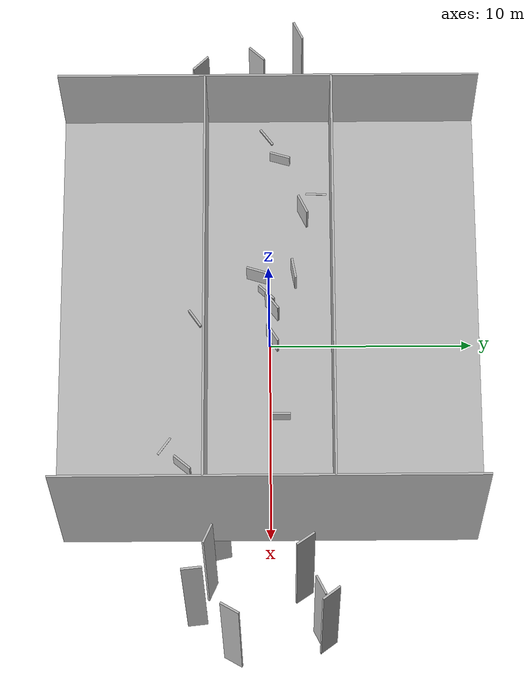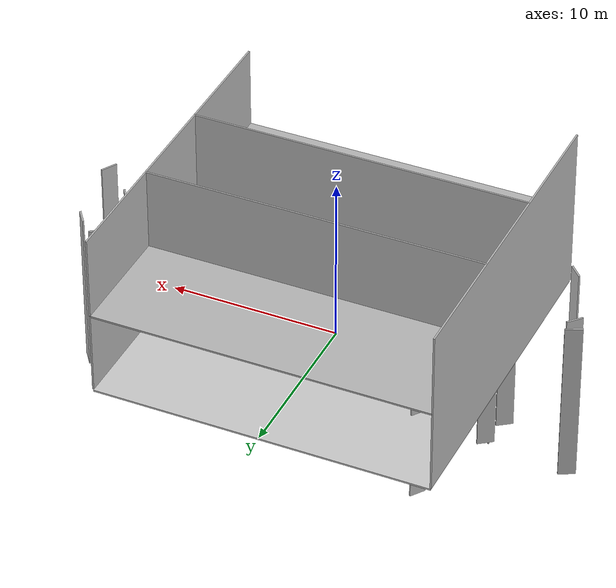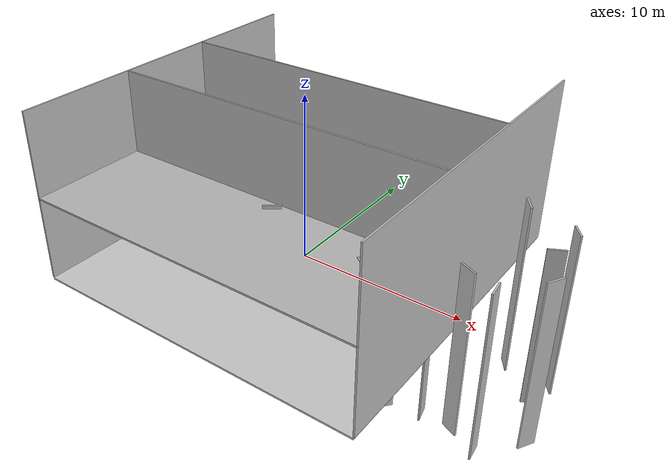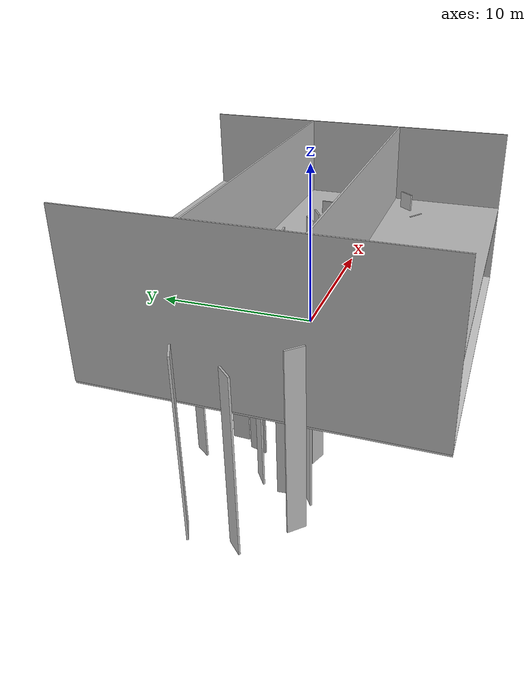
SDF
<?xml version="1.0"?>
<!--
  You can echo lidar messages using:
    ign topic -e -t /lidar
-->
<sdf version="1.8">
  <world name="empty_world">
    <physics name="1ms" type="ignored">
      <max_step_size>0.002</max_step_size>
      <real_time_factor>2.0</real_time_factor>
    </physics>
    <plugin filename="libignition-gazebo-physics-system.so" name="ignition::gazebo::systems::Physics"></plugin>
    <plugin filename="libignition-gazebo-sensors-system.so" name="ignition::gazebo::systems::Sensors">
      <render_engine>ogre2</render_engine>
    </plugin>
    <plugin filename="libignition-gazebo-scene-broadcaster-system.so" name="ignition::gazebo::systems::SceneBroadcaster"></plugin>
    <plugin filename="ignition-gazebo-user-commands-system" name="ignition::gazebo::systems::UserCommands"></plugin>

    <gui fullscreen="0">

      <!-- 3D scene -->
      <plugin filename="MinimalScene" name="3D View">
        <ignition-gui>
          <title>3D View</title>
          <property type="bool" key="showTitleBar">false</property>
          <property type="string" key="state">docked</property>
        </ignition-gui>

        <engine>ogre2</engine>
        <scene>scene</scene>
        <ambient_light>0.4 0.4 0.4</ambient_light>
        <background_color>0.8 0.8 0.8</background_color>
        <camera_pose>-6 0 6 0 0.5 0</camera_pose>
      </plugin>

      <!-- Plugins that add functionality to the scene -->
      <plugin filename="EntityContextMenuPlugin" name="Entity context menu">
        <ignition-gui>
          <property key="state" type="string">floating</property>
          <property key="width" type="double">5</property>
          <property key="height" type="double">5</property>
          <property key="showTitleBar" type="bool">false</property>
        </ignition-gui>
      </plugin>
      <plugin filename="GzSceneManager" name="Scene Manager">
        <ignition-gui>
          <property key="resizable" type="bool">false</property>
          <property key="width" type="double">5</property>
          <property key="height" type="double">5</property>
          <property key="state" type="string">floating</property>
          <property key="showTitleBar" type="bool">false</property>
        </ignition-gui>
      </plugin>
      <plugin filename="InteractiveViewControl" name="Interactive view control">
        <ignition-gui>
          <property key="resizable" type="bool">false</property>
          <property key="width" type="double">5</property>
          <property key="height" type="double">5</property>
          <property key="state" type="string">floating</property>
          <property key="showTitleBar" type="bool">false</property>
        </ignition-gui>
      </plugin>
      <plugin filename="CameraTracking" name="Camera Tracking">
        <ignition-gui>
          <property key="resizable" type="bool">false</property>
          <property key="width" type="double">5</property>
          <property key="height" type="double">5</property>
          <property key="state" type="string">floating</property>
          <property key="showTitleBar" type="bool">false</property>
        </ignition-gui>
      </plugin>
      <!-- World control -->
      <plugin filename="WorldControl" name="World control">
        <ignition-gui>
          <title>World control</title>
          <property type="bool" key="showTitleBar">false</property>
          <property type="bool" key="resizable">false</property>
          <property type="double" key="height">72</property>
          <property type="double" key="width">121</property>
          <property type="double" key="z">1</property>

          <property type="string" key="state">floating</property>
          <anchors target="3D View">
            <line own="left" target="left" />
            <line own="bottom" target="bottom" />
          </anchors>
        </ignition-gui>

        <play_pause>true</play_pause>
        <step>true</step>
        <start_paused>true</start_paused>

      </plugin>

      <!-- World statistics -->
      <plugin filename="WorldStats" name="World stats">
        <ignition-gui>
          <title>World stats</title>
          <property type="bool" key="showTitleBar">false</property>
          <property type="bool" key="resizable">false</property>
          <property type="double" key="height">110</property>
          <property type="double" key="width">290</property>
          <property type="double" key="z">1</property>

          <property type="string" key="state">floating</property>
          <anchors target="3D View">
            <line own="right" target="right" />
            <line own="bottom" target="bottom" />
          </anchors>
        </ignition-gui>

        <sim_time>true</sim_time>
        <real_time>true</real_time>
        <real_time_factor>true</real_time_factor>
        <iterations>true</iterations>
      </plugin>

      <plugin filename="VisualizeLidar" name="Visualize Lidar"></plugin>

      <!-- Inspector -->
      <plugin filename="ComponentInspector" name="Component inspector">
        <ignition-gui>
          <property type="string" key="state">docked</property>
        </ignition-gui>

        <!-- Visualization Capabilities -->
      </plugin>
      <plugin filename="VisualizationCapabilities" name="Visualization Capabilities">
        <ignition-gui>
          <property type="string" key="state">docked</property>
        </ignition-gui>
      </plugin>

      <!-- Entity tree -->
      <plugin filename="EntityTree" name="Entity tree">
        <ignition-gui>
          <property type="string" key="state">docked</property>
        </ignition-gui>
      </plugin>
    </gui>

    <light type="directional" name="sun">
      <cast_shadows>true</cast_shadows>
      <pose>0 0 10 0 0 0</pose>
      <diffuse>0.8 0.8 0.8 1</diffuse>
      <specular>0.2 0.2 0.2 1</specular>
      <attenuation>
        <range>1000</range>
        <constant>0.9</constant>
        <linear>0.01</linear>
        <quadratic>0.001</quadratic>
      </attenuation>
      <direction>-0.5 0.1 -0.9</direction>
    </light>

    <model name="ground_plane">
      <static>true</static>
      <link name="link">
        <pose>0 0 -0.1 0 0 0</pose>
        <collision name="collision">
          <geometry>
            <box>
              <size>50 50 0.1</size>
            </box>
          </geometry>
        </collision>
        <visual name="visual">
          <geometry>
            <box>
              <size>20 20 0.1</size>
            </box>
          </geometry>
          <material>
            <ambient>0.8 0.8 0.8 1</ambient>
            <diffuse>0.8 0.8 0.8 1</diffuse>
            <specular>0.8 0.8 0.8 1</specular>
          </material>
        </visual>
      </link>
    </model>

    <model name="right">
      <pose>0.0 -3.0 5.0 0.0 0.0 0.0</pose>
      <static>true</static>
          <link name="body">
              <visual name="visual">
                  <geometry>
                      <box>
                          <size>20.0 0.1 10.0</size>
                      </box>
                  </geometry>
              </visual>
              <collision name="collision">
                  <geometry>
                      <box>
                          <size>20.0 0.1 10.0</size>
                      </box>
                  </geometry>
              </collision>
          </link>
  </model>

  <model name="left">
    <pose>0.0 3.0 5.0 0.0 0.0 0.0</pose>
    <static>true</static>
        <link name="body">
            <visual name="visual">
                <geometry>
                    <box>
                        <size>20.0 0.1 10.0</size>
                    </box>
                </geometry>
            </visual>
            <collision name="collision">
                <geometry>
                    <box>
                        <size>20.0 0.1 10.0</size>
                    </box>
                </geometry>
            </collision>
        </link>
</model>

<model name="front">
  <pose>10.0 0.0 5.0 0.0 0.0 0.0</pose>
  <static>true</static>
      <link name="body">
          <visual name="visual">
              <geometry>
                  <box>
                      <size>0.10 20.0 10.0</size>
                  </box>
              </geometry>
          </visual>
          <collision name="collision">
              <geometry>
                  <box>
                      <size>0.1 20.0 10.0</size>
                  </box>
              </geometry>
          </collision>
      </link>
</model>
<model name="back">
  <pose>-10.0 0.0 5.0 0.0 0.0 0.0</pose>
  <static>true</static>
      <link name="body">
          <visual name="visual">
              <geometry>
                  <box>
                      <size>0.10 20.0 10.0</size>
                  </box>
              </geometry>
          </visual>
          <collision name="collision">
              <geometry>
                  <box>
                      <size>0.1 20.0 10.0</size>
                  </box>
              </geometry>
          </collision>
      </link>
</model>

<model name="top">
    <pose>0.0 0.0 5.0 0.0 0.0 0.0</pose>
    <static>true</static>
        <link name="body">
            <visual name="visual">
                <geometry>
                    <box>
                        <size>20.0 20.0 0.1</size>
                    </box>
                </geometry>
            </visual>
            <collision name="collision">
                <geometry>
                    <box>
                        <size>20.0 20.0 0.1</size>
                    </box>
                </geometry>
            </collision>
        </link>
  </model>

<model name="rod20">
    <pose>-0.5962195651248301 -0.13511467152719003 0.7509072292105516 0.0 0.0 -2.322969249595137</pose>
    <static>true</static>
        <link name="body">
            <visual name="visual">
                <geometry>
                    <box>
                        <size>1.0 0.1 10.0</size>
                    </box>
                </geometry>
            </visual>
            <collision name="collision">
                <geometry>
                    <box>
                        <size>1.0 0.1 10.0</size>
                    </box>
                </geometry>
            </collision>
        </link>
</model>

<model name="rod21">
    <pose>6.929399558452296 -4.968608688917902 0.08197182604034947 0.0 0.0 2.518176501528531</pose>
    <static>true</static>
        <link name="body">
            <visual name="visual">
                <geometry>
                    <box>
                        <size>1.0 0.1 10.0</size>
                    </box>
                </geometry>
            </visual>
            <collision name="collision">
                <geometry>
                    <box>
                        <size>1.0 0.1 10.0</size>
                    </box>
                </geometry>
            </collision>
        </link>
</model>

<model name="rod22">
    <pose>12.03782852466339 1.629299434217791 1.9628220508638439 0.0 0.0 2.1672310481837966</pose>
    <static>true</static>
        <link name="body">
            <visual name="visual">
                <geometry>
                    <box>
                        <size>1.0 0.1 10.0</size>
                    </box>
                </geometry>
            </visual>
            <collision name="collision">
                <geometry>
                    <box>
                        <size>1.0 0.1 10.0</size>
                    </box>
                </geometry>
            </collision>
        </link>
</model>

<model name="rod23">
    <pose>-1.326404483557992 3.6456382028918934 -0.32533797054061675 0.0 0.0 2.266616831586777</pose>
    <static>true</static>
        <link name="body">
            <visual name="visual">
                <geometry>
                    <box>
                        <size>1.0 0.1 10.0</size>
                    </box>
                </geometry>
            </visual>
            <collision name="collision">
                <geometry>
                    <box>
                        <size>1.0 0.1 10.0</size>
                    </box>
                </geometry>
            </collision>
        </link>
</model>

<model name="rod24">
    <pose>-1.5320243106310194 1.176988305104234 1.4795079391196184 0.0 0.0 -2.9603563123912044</pose>
    <static>true</static>
        <link name="body">
            <visual name="visual">
                <geometry>
                    <box>
                        <size>1.0 0.1 10.0</size>
                    </box>
                </geometry>
            </visual>
            <collision name="collision">
                <geometry>
                    <box>
                        <size>1.0 0.1 10.0</size>
                    </box>
                </geometry>
            </collision>
        </link>
</model>

<model name="rod25">
    <pose>-1.4755717037993623 -0.593762355271938 1.3618353953104219 0.0 0.0 1.272454173530316</pose>
    <static>true</static>
        <link name="body">
            <visual name="visual">
                <geometry>
                    <box>
                        <size>1.0 0.1 10.0</size>
                    </box>
                </geometry>
            </visual>
            <collision name="collision">
                <geometry>
                    <box>
                        <size>1.0 0.1 10.0</size>
                    </box>
                </geometry>
            </collision>
        </link>
</model>

<model name="rod26">
    <pose>14.938996435316405 -1.8723082614284872 0.7204933290662239 0.0 0.0 1.047825092516458</pose>
    <static>true</static>
        <link name="body">
            <visual name="visual">
                <geometry>
                    <box>
                        <size>1.0 0.1 10.0</size>
                    </box>
                </geometry>
            </visual>
            <collision name="collision">
                <geometry>
                    <box>
                        <size>1.0 0.1 10.0</size>
                    </box>
                </geometry>
            </collision>
        </link>
</model>

<model name="rod27">
    <pose>0.9810349273095529 -2.8030351578807924 -0.6686929281344867 0.0 0.0 -2.0749010520516857</pose>
    <static>true</static>
        <link name="body">
            <visual name="visual">
                <geometry>
                    <box>
                        <size>1.0 0.1 10.0</size>
                    </box>
                </geometry>
            </visual>
            <collision name="collision">
                <geometry>
                    <box>
                        <size>1.0 0.1 10.0</size>
                    </box>
                </geometry>
            </collision>
        </link>
</model>

<model name="rod28">
    <pose>8.047487761845215 -4.089605032699679 1.111174542131518 0.0 0.0 -2.2676884181221855</pose>
    <static>true</static>
        <link name="body">
            <visual name="visual">
                <geometry>
                    <box>
                        <size>1.0 0.1 10.0</size>
                    </box>
                </geometry>
            </visual>
            <collision name="collision">
                <geometry>
                    <box>
                        <size>1.0 0.1 10.0</size>
                    </box>
                </geometry>
            </collision>
        </link>
</model>

<model name="rod29">
    <pose>-8.863330744700301 -1.4468232685773543 -0.6275973847753499 0.0 0.0 -1.490455685157367</pose>
    <static>true</static>
        <link name="body">
            <visual name="visual">
                <geometry>
                    <box>
                        <size>1.0 0.1 10.0</size>
                    </box>
                </geometry>
            </visual>
            <collision name="collision">
                <geometry>
                    <box>
                        <size>1.0 0.1 10.0</size>
                    </box>
                </geometry>
            </collision>
        </link>
</model>

<model name="rod30">
    <pose>0.5281687146927112 -3.563891884314354 0.2566651800652111 0.0 0.0 -2.534004889268199</pose>
    <static>true</static>
        <link name="body">
            <visual name="visual">
                <geometry>
                    <box>
                        <size>1.0 0.1 10.0</size>
                    </box>
                </geometry>
            </visual>
            <collision name="collision">
                <geometry>
                    <box>
                        <size>1.0 0.1 10.0</size>
                    </box>
                </geometry>
            </collision>
        </link>
</model>

<model name="rod31">
    <pose>13.527893393997587 2.35195097172738 -0.5029062205876375 0.0 0.0 -2.6723814034518307</pose>
    <static>true</static>
        <link name="body">
            <visual name="visual">
                <geometry>
                    <box>
                        <size>1.0 0.1 10.0</size>
                    </box>
                </geometry>
            </visual>
            <collision name="collision">
                <geometry>
                    <box>
                        <size>1.0 0.1 10.0</size>
                    </box>
                </geometry>
            </collision>
        </link>
</model>

<model name="rod32">
    <pose>-14.493531667866325 1.4836936226957764 1.0504842894467692 0.0 0.0 -2.6891523662036887</pose>
    <static>true</static>
        <link name="body">
            <visual name="visual">
                <geometry>
                    <box>
                        <size>1.0 0.1 10.0</size>
                    </box>
                </geometry>
            </visual>
            <collision name="collision">
                <geometry>
                    <box>
                        <size>1.0 0.1 10.0</size>
                    </box>
                </geometry>
            </collision>
        </link>
</model>

<model name="rod33">
    <pose>14.221235037305703 2.806416295344895 0.5976217941411215 0.0 0.0 -0.9308893908626747</pose>
    <static>true</static>
        <link name="body">
            <visual name="visual">
                <geometry>
                    <box>
                        <size>1.0 0.1 10.0</size>
                    </box>
                </geometry>
            </visual>
            <collision name="collision">
                <geometry>
                    <box>
                        <size>1.0 0.1 10.0</size>
                    </box>
                </geometry>
            </collision>
        </link>
</model>

<model name="rod34">
    <pose>9.464129073874297 -2.479849411999826 0.06804912862293966 0.0 0.0 1.7913612659166747</pose>
    <static>true</static>
        <link name="body">
            <visual name="visual">
                <geometry>
                    <box>
                        <size>1.0 0.1 10.0</size>
                    </box>
                </geometry>
            </visual>
            <collision name="collision">
                <geometry>
                    <box>
                        <size>1.0 0.1 10.0</size>
                    </box>
                </geometry>
            </collision>
        </link>
</model>

<model name="rod35">
    <pose>1.753414926585645 0.14926306755197682 1.513708097569248 0.0 0.0 -2.593044774296912</pose>
    <static>true</static>
        <link name="body">
            <visual name="visual">
                <geometry>
                    <box>
                        <size>1.0 0.1 10.0</size>
                    </box>
                </geometry>
            </visual>
            <collision name="collision">
                <geometry>
                    <box>
                        <size>1.0 0.1 10.0</size>
                    </box>
                </geometry>
            </collision>
        </link>
</model>

<model name="rod36">
    <pose>-5.72268801180568 -2.196006616010232 -0.6605869257015842 0.0 0.0 -0.35169293339406416</pose>
    <static>true</static>
        <link name="body">
            <visual name="visual">
                <geometry>
                    <box>
                        <size>1.0 0.1 10.0</size>
                    </box>
                </geometry>
            </visual>
            <collision name="collision">
                <geometry>
                    <box>
                        <size>1.0 0.1 10.0</size>
                    </box>
                </geometry>
            </collision>
        </link>
</model>

<model name="rod37">
    <pose>1.8129315623545104 -0.7715574093258901 -0.3043233296916129 0.0 0.0 1.2757844614339184</pose>
    <static>true</static>
        <link name="body">
            <visual name="visual">
                <geometry>
                    <box>
                        <size>1.0 0.1 10.0</size>
                    </box>
                </geometry>
            </visual>
            <collision name="collision">
                <geometry>
                    <box>
                        <size>1.0 0.1 10.0</size>
                    </box>
                </geometry>
            </collision>
        </link>
</model>

<model name="rod38">
    <pose>11.300437843830338 -2.9156994011833195 0.439402228842912 0.0 0.0 2.7144378255702346</pose>
    <static>true</static>
        <link name="body">
            <visual name="visual">
                <geometry>
                    <box>
                        <size>1.0 0.1 10.0</size>
                    </box>
                </geometry>
            </visual>
            <collision name="collision">
                <geometry>
                    <box>
                        <size>1.0 0.1 10.0</size>
                    </box>
                </geometry>
            </collision>
        </link>
</model>

<model name="rod39">
    <pose>-12.718258907566714 -3.337356039801244 1.0228187308064616 0.0 0.0 -0.8140245279609744</pose>
    <static>true</static>
        <link name="body">
            <visual name="visual">
                <geometry>
                    <box>
                        <size>1.0 0.1 10.0</size>
                    </box>
                </geometry>
            </visual>
            <collision name="collision">
                <geometry>
                    <box>
                        <size>1.0 0.1 10.0</size>
                    </box>
                </geometry>
            </collision>
        </link>
</model>

<model name="rod40">
    <pose>12.974031564950891 -3.6466257361296073 0.47412985431328813 0.0 0.0 -1.463357355122578</pose>
    <static>true</static>
        <link name="body">
            <visual name="visual">
                <geometry>
                    <box>
                        <size>1.0 0.1 10.0</size>
                    </box>
                </geometry>
            </visual>
            <collision name="collision">
                <geometry>
                    <box>
                        <size>1.0 0.1 10.0</size>
                    </box>
                </geometry>
            </collision>
        </link>
</model>

<model name="rod41">
    <pose>5.601326898222137 0.4764138660187536 0.8712678889281813 0.0 0.0 1.562581659428127</pose>
    <static>true</static>
        <link name="body">
            <visual name="visual">
                <geometry>
                    <box>
                        <size>1.0 0.1 10.0</size>
                    </box>
                </geometry>
            </visual>
            <collision name="collision">
                <geometry>
                    <box>
                        <size>1.0 0.1 10.0</size>
                    </box>
                </geometry>
            </collision>
        </link>
</model>

<model name="rod42">
    <pose>-7.731632322998876 0.5378197791360995 0.9302068148249139 0.0 0.0 1.2823340913115668</pose>
    <static>true</static>
        <link name="body">
            <visual name="visual">
                <geometry>
                    <box>
                        <size>1.0 0.1 10.0</size>
                    </box>
                </geometry>
            </visual>
            <collision name="collision">
                <geometry>
                    <box>
                        <size>1.0 0.1 10.0</size>
                    </box>
                </geometry>
            </collision>
        </link>
</model>

<model name="rod43">
    <pose>-4.717017306762694 1.6255869493657205 1.8368237713193891 0.0 0.0 -2.6887828952330244</pose>
    <static>true</static>
        <link name="body">
            <visual name="visual">
                <geometry>
                    <box>
                        <size>1.0 0.1 10.0</size>
                    </box>
                </geometry>
            </visual>
            <collision name="collision">
                <geometry>
                    <box>
                        <size>1.0 0.1 10.0</size>
                    </box>
                </geometry>
            </collision>
        </link>
</model>

<model name="rod44">
    <pose>-6.921619205483182 4.39650412623225 -0.7667814580173424 0.0 0.0 0.9482561774872469</pose>
    <static>true</static>
        <link name="body">
            <visual name="visual">
                <geometry>
                    <box>
                        <size>1.0 0.1 10.0</size>
                    </box>
                </geometry>
            </visual>
            <collision name="collision">
                <geometry>
                    <box>
                        <size>1.0 0.1 10.0</size>
                    </box>
                </geometry>
            </collision>
        </link>
</model>

<model name="rod45">
    <pose>-13.781696566147026 -0.5808151078382098 -0.014401837199860545 0.0 0.0 0.8326496469368907</pose>
    <static>true</static>
        <link name="body">
            <visual name="visual">
                <geometry>
                    <box>
                        <size>1.0 0.1 10.0</size>
                    </box>
                </geometry>
            </visual>
            <collision name="collision">
                <geometry>
                    <box>
                        <size>1.0 0.1 10.0</size>
                    </box>
                </geometry>
            </collision>
        </link>
</model>

<model name="rod46">
    <pose>-9.144203978249736 -2.7542637956913563 -0.4716439055405778 0.0 0.0 -2.5124296859696456</pose>
    <static>true</static>
        <link name="body">
            <visual name="visual">
                <geometry>
                    <box>
                        <size>1.0 0.1 10.0</size>
                    </box>
                </geometry>
            </visual>
            <collision name="collision">
                <geometry>
                    <box>
                        <size>1.0 0.1 10.0</size>
                    </box>
                </geometry>
            </collision>
        </link>
</model>

<model name="rod47">
    <pose>0.20531374267898173 0.1331506878960944 1.6596842464267314 0.0 0.0 0.6488818501499161</pose>
    <static>true</static>
        <link name="body">
            <visual name="visual">
                <geometry>
                    <box>
                        <size>1.0 0.1 10.0</size>
                    </box>
                </geometry>
            </visual>
            <collision name="collision">
                <geometry>
                    <box>
                        <size>1.0 0.1 10.0</size>
                    </box>
                </geometry>
            </collision>
        </link>
</model>

<model name="rod48">
    <pose>-9.067880314704436 -0.10843742114654731 0.17501888523026143 0.0 0.0 -2.498883953108616</pose>
    <static>true</static>
        <link name="body">
            <visual name="visual">
                <geometry>
                    <box>
                        <size>1.0 0.1 10.0</size>
                    </box>
                </geometry>
            </visual>
            <collision name="collision">
                <geometry>
                    <box>
                        <size>1.0 0.1 10.0</size>
                    </box>
                </geometry>
            </collision>
        </link>
</model>

<model name="rod49">
    <pose>-6.0173494361436966 2.2875695961350493 0.06963172566113696 0.0 0.0 1.5325039511558511</pose>
    <static>true</static>
        <link name="body">
            <visual name="visual">
                <geometry>
                    <box>
                        <size>1.0 0.1 10.0</size>
                    </box>
                </geometry>
            </visual>
            <collision name="collision">
                <geometry>
                    <box>
                        <size>1.0 0.1 10.0</size>
                    </box>
                </geometry>
            </collision>
        </link>
</model>

  </world>
</sdf>
